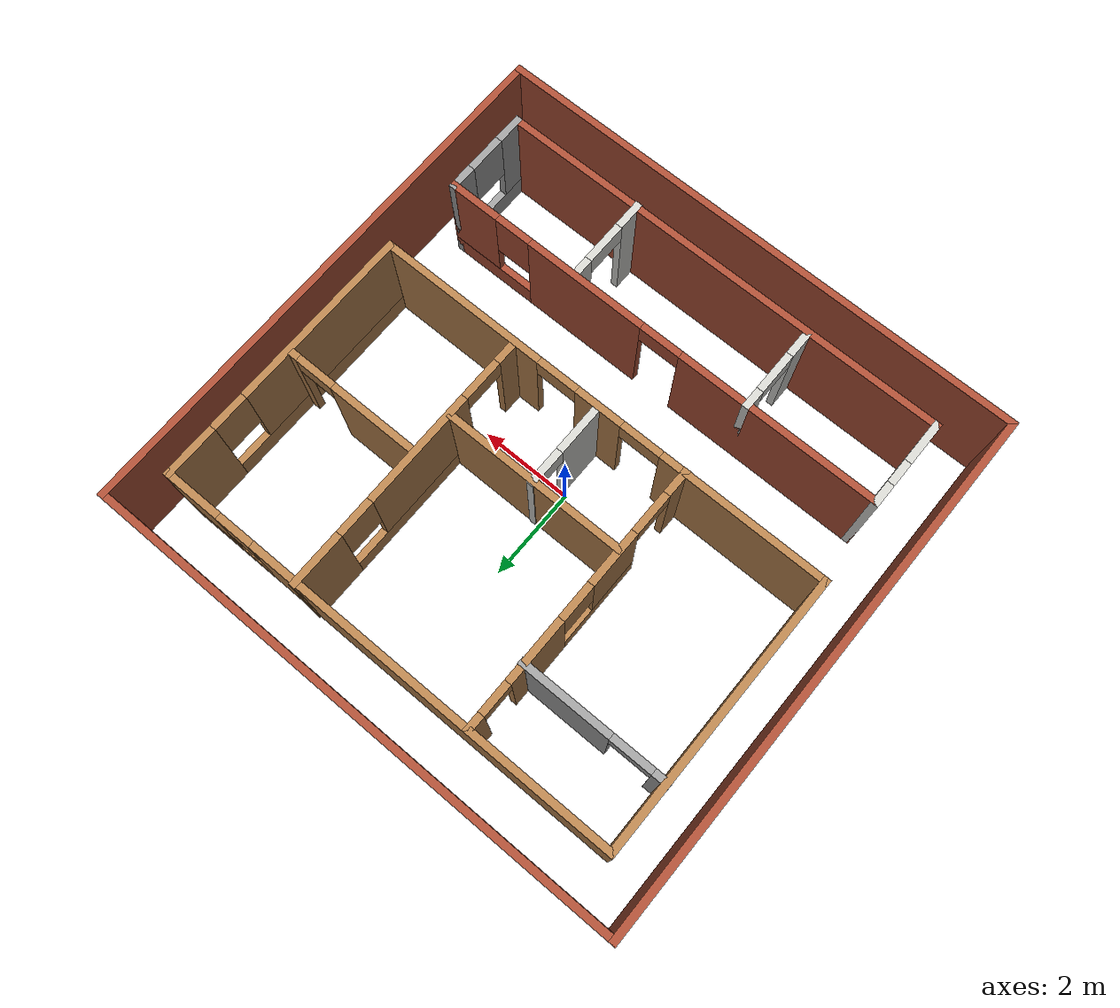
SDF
<?xml version='1.0'?>
<sdf version='1.6'>
  <model name='Building'>
    <pose frame=''>0.011861 0.071528 0 0 -0 0</pose>
    <link name='Wall_0'>
      <collision name='Wall_0_Collision'>
        <geometry>
          <box>
            <size>11.75 0.15 2.5</size>
          </box>
        </geometry>
        <pose frame=''>0 0 1.25 0 -0 0</pose>
      </collision>
      <visual name='Wall_0_Visual'>
        <pose frame=''>0 0 1.25 0 -0 0</pose>
        <geometry>
          <box>
            <size>11.75 0.15 2.5</size>
          </box>
        </geometry>
        <material>
          <script>
            <uri>file://media/materials/scripts/gazebo.material</uri>
            <name>Gazebo/Bricks</name>
          </script>
          <ambient>1 1 1 1</ambient>
        </material>
      </visual>
      <pose frame=''>0 5.675 0 0 -0 0</pose>
    </link>
    <link name='Wall_1'>
      <collision name='Wall_1_Collision'>
        <geometry>
          <box>
            <size>11.5 0.15 2.5</size>
          </box>
        </geometry>
        <pose frame=''>0 0 1.25 0 -0 0</pose>
      </collision>
      <visual name='Wall_1_Visual'>
        <pose frame=''>0 0 1.25 0 -0 0</pose>
        <geometry>
          <box>
            <size>11.5 0.15 2.5</size>
          </box>
        </geometry>
        <material>
          <script>
            <uri>file://media/materials/scripts/gazebo.material</uri>
            <name>Gazebo/Bricks</name>
          </script>
          <ambient>1 1 1 1</ambient>
        </material>
      </visual>
      <pose frame=''>5.8 0 0 0 0 -1.5708</pose>
    </link>
    <link name='Wall_10'>
      <pose frame=''>-1.84004 1.73225 0 0 0 -1.5708</pose>
      <visual name='Wall_10_Visual_0'>
        <pose frame=''>-2.79882 0 1.25 0 -0 0</pose>
        <geometry>
          <box>
            <size>0.402365 0.15 2.5</size>
          </box>
        </geometry>
        <material>
          <script>
            <uri>file://media/materials/scripts/gazebo.material</uri>
            <name>Gazebo/Wood</name>
          </script>
          <ambient>1 1 1 1</ambient>
        </material>
      </visual>
      <collision name='Wall_10_Collision_0'>
        <geometry>
          <box>
            <size>0.402365 0.15 2.5</size>
          </box>
        </geometry>
        <pose frame=''>-2.79882 0 1.25 0 -0 0</pose>
      </collision>
      <visual name='Wall_10_Visual_1'>
        <pose frame=''>-1.20319 0 1.25 0 -0 0</pose>
        <geometry>
          <box>
            <size>1.40523 0.15 2.5</size>
          </box>
        </geometry>
        <material>
          <script>
            <uri>file://media/materials/scripts/gazebo.material</uri>
            <name>Gazebo/Wood</name>
          </script>
          <ambient>1 1 1 1</ambient>
        </material>
      </visual>
      <collision name='Wall_10_Collision_1'>
        <geometry>
          <box>
            <size>1.40523 0.15 2.5</size>
          </box>
        </geometry>
        <pose frame=''>-1.20319 0 1.25 0 -0 0</pose>
      </collision>
      <visual name='Wall_10_Visual_2'>
        <pose frame=''>2.70402 0 1.25 0 -0 0</pose>
        <geometry>
          <box>
            <size>0.591953 0.15 2.5</size>
          </box>
        </geometry>
        <material>
          <script>
            <uri>file://media/materials/scripts/gazebo.material</uri>
            <name>Gazebo/Wood</name>
          </script>
          <ambient>1 1 1 1</ambient>
        </material>
      </visual>
      <collision name='Wall_10_Collision_2'>
        <geometry>
          <box>
            <size>0.591953 0.15 2.5</size>
          </box>
        </geometry>
        <pose frame=''>2.70402 0 1.25 0 -0 0</pose>
      </collision>
      <visual name='Wall_10_Visual_3'>
        <pose frame=''>0.503735 0 0.25 0 -0 0</pose>
        <geometry>
          <box>
            <size>2.00862 0.15 0.5</size>
          </box>
        </geometry>
        <material>
          <script>
            <uri>file://media/materials/scripts/gazebo.material</uri>
            <name>Gazebo/Wood</name>
          </script>
          <ambient>1 1 1 1</ambient>
        </material>
      </visual>
      <collision name='Wall_10_Collision_3'>
        <geometry>
          <box>
            <size>2.00862 0.15 0.5</size>
          </box>
        </geometry>
        <pose frame=''>0.503735 0 0.25 0 -0 0</pose>
      </collision>
      <visual name='Wall_10_Visual_4'>
        <pose frame=''>0.903735 0 1.5 0 -0 0</pose>
        <geometry>
          <box>
            <size>1.20862 0.15 2</size>
          </box>
        </geometry>
        <material>
          <script>
            <uri>file://media/materials/scripts/gazebo.material</uri>
            <name>Gazebo/Wood</name>
          </script>
          <ambient>1 1 1 1</ambient>
        </material>
      </visual>
      <collision name='Wall_10_Collision_4'>
        <geometry>
          <box>
            <size>1.20862 0.15 2</size>
          </box>
        </geometry>
        <pose frame=''>0.903735 0 1.5 0 -0 0</pose>
      </collision>
      <visual name='Wall_10_Visual_5'>
        <pose frame=''>-0.100577 0 1.9 0 -0 0</pose>
        <geometry>
          <box>
            <size>0.8 0.15 1.2</size>
          </box>
        </geometry>
        <material>
          <script>
            <uri>file://media/materials/scripts/gazebo.material</uri>
            <name>Gazebo/Wood</name>
          </script>
          <ambient>1 1 1 1</ambient>
        </material>
      </visual>
      <collision name='Wall_10_Collision_5'>
        <geometry>
          <box>
            <size>0.8 0.15 1.2</size>
          </box>
        </geometry>
        <pose frame=''>-0.100577 0 1.9 0 -0 0</pose>
      </collision>
      <visual name='Wall_10_Visual_6'>
        <pose frame=''>-2.25172 0 2.25 0 -0 0</pose>
        <geometry>
          <box>
            <size>0.691825 0.15 0.5</size>
          </box>
        </geometry>
        <material>
          <script>
            <uri>file://media/materials/scripts/gazebo.material</uri>
            <name>Gazebo/Wood</name>
          </script>
          <ambient>1 1 1 1</ambient>
        </material>
      </visual>
      <collision name='Wall_10_Collision_6'>
        <geometry>
          <box>
            <size>0.691825 0.15 0.5</size>
          </box>
        </geometry>
        <pose frame=''>-2.25172 0 2.25 0 -0 0</pose>
      </collision>
      <visual name='Wall_10_Visual_7'>
        <pose frame=''>1.95805 0 2.25 0 -0 0</pose>
        <geometry>
          <box>
            <size>0.9 0.15 0.5</size>
          </box>
        </geometry>
        <material>
          <script>
            <uri>file://media/materials/scripts/gazebo.material</uri>
            <name>Gazebo/Wood</name>
          </script>
          <ambient>1 1 1 1</ambient>
        </material>
      </visual>
      <collision name='Wall_10_Collision_7'>
        <geometry>
          <box>
            <size>0.9 0.15 0.5</size>
          </box>
        </geometry>
        <pose frame=''>1.95805 0 2.25 0 -0 0</pose>
      </collision>
    </link>
    <link name='Wall_12'>
      <pose frame=''>2.10026 1.76579 0 0 0 -1.5708</pose>
      <visual name='Wall_12_Visual_0'>
        <pose frame=''>-2.39274 0 1.25 0 -0 0</pose>
        <geometry>
          <box>
            <size>1.21452 0.15 2.5</size>
          </box>
        </geometry>
        <material>
          <script>
            <uri>file://media/materials/scripts/gazebo.material</uri>
            <name>Gazebo/Wood</name>
          </script>
          <ambient>1 1 1 1</ambient>
        </material>
      </visual>
      <collision name='Wall_12_Collision_0'>
        <geometry>
          <box>
            <size>1.21452 0.15 2.5</size>
          </box>
        </geometry>
        <pose frame=''>-2.39274 0 1.25 0 -0 0</pose>
      </collision>
      <visual name='Wall_12_Visual_1'>
        <pose frame=''>2.72079 0 1.25 0 -0 0</pose>
        <geometry>
          <box>
            <size>0.558413 0.15 2.5</size>
          </box>
        </geometry>
        <material>
          <script>
            <uri>file://media/materials/scripts/gazebo.material</uri>
            <name>Gazebo/Wood</name>
          </script>
          <ambient>1 1 1 1</ambient>
        </material>
      </visual>
      <collision name='Wall_12_Collision_1'>
        <geometry>
          <box>
            <size>0.558413 0.15 2.5</size>
          </box>
        </geometry>
        <pose frame=''>2.72079 0 1.25 0 -0 0</pose>
      </collision>
      <visual name='Wall_12_Visual_2'>
        <pose frame=''>-0.121948 0 0.25 0 -0 0</pose>
        <geometry>
          <box>
            <size>3.32707 0.15 0.5</size>
          </box>
        </geometry>
        <material>
          <script>
            <uri>file://media/materials/scripts/gazebo.material</uri>
            <name>Gazebo/Wood</name>
          </script>
          <ambient>1 1 1 1</ambient>
        </material>
      </visual>
      <collision name='Wall_12_Collision_2'>
        <geometry>
          <box>
            <size>3.32707 0.15 0.5</size>
          </box>
        </geometry>
        <pose frame=''>-0.121948 0 0.25 0 -0 0</pose>
      </collision>
      <visual name='Wall_12_Visual_3'>
        <pose frame=''>0.278052 0 1.5 0 -0 0</pose>
        <geometry>
          <box>
            <size>2.52707 0.15 2</size>
          </box>
        </geometry>
        <material>
          <script>
            <uri>file://media/materials/scripts/gazebo.material</uri>
            <name>Gazebo/Wood</name>
          </script>
          <ambient>1 1 1 1</ambient>
        </material>
      </visual>
      <collision name='Wall_12_Collision_3'>
        <geometry>
          <box>
            <size>2.52707 0.15 2</size>
          </box>
        </geometry>
        <pose frame=''>0.278052 0 1.5 0 -0 0</pose>
      </collision>
      <visual name='Wall_12_Visual_4'>
        <pose frame=''>-1.38548 0 1.9 0 -0 0</pose>
        <geometry>
          <box>
            <size>0.8 0.15 1.2</size>
          </box>
        </geometry>
        <material>
          <script>
            <uri>file://media/materials/scripts/gazebo.material</uri>
            <name>Gazebo/Wood</name>
          </script>
          <ambient>1 1 1 1</ambient>
        </material>
      </visual>
      <collision name='Wall_12_Collision_4'>
        <geometry>
          <box>
            <size>0.8 0.15 1.2</size>
          </box>
        </geometry>
        <pose frame=''>-1.38548 0 1.9 0 -0 0</pose>
      </collision>
      <visual name='Wall_12_Visual_5'>
        <pose frame=''>1.99159 0 2.25 0 -0 0</pose>
        <geometry>
          <box>
            <size>0.9 0.15 0.5</size>
          </box>
        </geometry>
        <material>
          <script>
            <uri>file://media/materials/scripts/gazebo.material</uri>
            <name>Gazebo/Wood</name>
          </script>
          <ambient>1 1 1 1</ambient>
        </material>
      </visual>
      <collision name='Wall_12_Collision_5'>
        <geometry>
          <box>
            <size>0.9 0.15 0.5</size>
          </box>
        </geometry>
        <pose frame=''>1.99159 0 2.25 0 -0 0</pose>
      </collision>
    </link>
    <link name='Wall_14'>
      <pose frame=''>-3.37566 3.22084 0 0 -0 0</pose>
      <visual name='Wall_14_Visual_0'>
        <pose frame=''>-1.44701 0 1.25 0 -0 0</pose>
        <geometry>
          <box>
            <size>0.355984 0.15 2.5</size>
          </box>
        </geometry>
        <material>
          <script>
            <uri>file://media/materials/scripts/gazebo.material</uri>
            <name>Gazebo/Grey</name>
          </script>
          <ambient>1 1 1 1</ambient>
        </material>
      </visual>
      <collision name='Wall_14_Collision_0'>
        <geometry>
          <box>
            <size>0.355984 0.15 2.5</size>
          </box>
        </geometry>
        <pose frame=''>-1.44701 0 1.25 0 -0 0</pose>
      </collision>
      <visual name='Wall_14_Visual_1'>
        <pose frame=''>0.627992 0 1.25 0 -0 0</pose>
        <geometry>
          <box>
            <size>1.99402 0.15 2.5</size>
          </box>
        </geometry>
        <material>
          <script>
            <uri>file://media/materials/scripts/gazebo.material</uri>
            <name>Gazebo/Grey</name>
          </script>
          <ambient>1 1 1 1</ambient>
        </material>
      </visual>
      <collision name='Wall_14_Collision_1'>
        <geometry>
          <box>
            <size>1.99402 0.15 2.5</size>
          </box>
        </geometry>
        <pose frame=''>0.627992 0 1.25 0 -0 0</pose>
      </collision>
      <visual name='Wall_14_Visual_2'>
        <pose frame=''>-0.819016 0 2.25 0 -0 0</pose>
        <geometry>
          <box>
            <size>0.9 0.15 0.5</size>
          </box>
        </geometry>
        <material>
          <script>
            <uri>file://media/materials/scripts/gazebo.material</uri>
            <name>Gazebo/Grey</name>
          </script>
          <ambient>1 1 1 1</ambient>
        </material>
      </visual>
      <collision name='Wall_14_Collision_2'>
        <geometry>
          <box>
            <size>0.9 0.15 0.5</size>
          </box>
        </geometry>
        <pose frame=''>-0.819016 0 2.25 0 -0 0</pose>
      </collision>
    </link>
    <link name='Wall_16'>
      <pose frame=''>3.63166 1.57857 0 0 -0 0</pose>
      <visual name='Wall_16_Visual_0'>
        <pose frame=''>-0.52805 0 1.25 0 -0 0</pose>
        <geometry>
          <box>
            <size>1.9439 0.15 2.5</size>
          </box>
        </geometry>
        <material>
          <script>
            <uri>file://media/materials/scripts/gazebo.material</uri>
            <name>Gazebo/Wood</name>
          </script>
          <ambient>1 1 1 1</ambient>
        </material>
      </visual>
      <collision name='Wall_16_Collision_0'>
        <geometry>
          <box>
            <size>1.9439 0.15 2.5</size>
          </box>
        </geometry>
        <pose frame=''>-0.52805 0 1.25 0 -0 0</pose>
      </collision>
      <visual name='Wall_16_Visual_1'>
        <pose frame=''>1.39882 0 1.25 0 -0 0</pose>
        <geometry>
          <box>
            <size>0.202362 0.15 2.5</size>
          </box>
        </geometry>
        <material>
          <script>
            <uri>file://media/materials/scripts/gazebo.material</uri>
            <name>Gazebo/Wood</name>
          </script>
          <ambient>1 1 1 1</ambient>
        </material>
      </visual>
      <collision name='Wall_16_Collision_1'>
        <geometry>
          <box>
            <size>0.202362 0.15 2.5</size>
          </box>
        </geometry>
        <pose frame=''>1.39882 0 1.25 0 -0 0</pose>
      </collision>
      <visual name='Wall_16_Visual_2'>
        <pose frame=''>0.870769 0 2.25 0 -0 0</pose>
        <geometry>
          <box>
            <size>0.853739 0.15 0.5</size>
          </box>
        </geometry>
        <material>
          <script>
            <uri>file://media/materials/scripts/gazebo.material</uri>
            <name>Gazebo/Wood</name>
          </script>
          <ambient>1 1 1 1</ambient>
        </material>
      </visual>
      <collision name='Wall_16_Collision_2'>
        <geometry>
          <box>
            <size>0.853739 0.15 0.5</size>
          </box>
        </geometry>
        <pose frame=''>0.870769 0 2.25 0 -0 0</pose>
      </collision>
    </link>
    <link name='Wall_18'>
      <collision name='Wall_18_Collision'>
        <geometry>
          <box>
            <size>4 0.15 2.5</size>
          </box>
        </geometry>
        <pose frame=''>0 0 1.25 0 -0 0</pose>
      </collision>
      <visual name='Wall_18_Visual'>
        <pose frame=''>0 0 1.25 0 -0 0</pose>
        <geometry>
          <box>
            <size>4 0.15 2.5</size>
          </box>
        </geometry>
        <material>
          <script>
            <uri>file://media/materials/scripts/gazebo.material</uri>
            <name>Gazebo/Wood</name>
          </script>
          <ambient>1 1 1 1</ambient>
        </material>
      </visual>
      <pose frame=''>0.11503 0.647562 0 0 -0 0</pose>
    </link>
    <link name='Wall_2'>
      <collision name='Wall_2_Collision'>
        <geometry>
          <box>
            <size>11.75 0.15 2.5</size>
          </box>
        </geometry>
        <pose frame=''>0 0 1.25 0 -0 0</pose>
      </collision>
      <visual name='Wall_2_Visual'>
        <pose frame=''>0 0 1.25 0 -0 0</pose>
        <geometry>
          <box>
            <size>11.75 0.15 2.5</size>
          </box>
        </geometry>
        <material>
          <script>
            <uri>file://media/materials/scripts/gazebo.material</uri>
            <name>Gazebo/Bricks</name>
          </script>
          <ambient>1 1 1 1</ambient>
        </material>
      </visual>
      <pose frame=''>0 -5.675 0 0 -0 3.14159</pose>
    </link>
    <link name='Wall_20'>
      <pose frame=''>0.128375 -0.257777 0 0 0 -1.5708</pose>
      <visual name='Wall_20_Visual_0'>
        <pose frame=''>-0.885558 0 1.25 0 -0 0</pose>
        <geometry>
          <box>
            <size>0.228885 0.15 2.5</size>
          </box>
        </geometry>
        <material>
          <script>
            <uri>file://media/materials/scripts/gazebo.material</uri>
            <name>Gazebo/CeilingTiled</name>
          </script>
          <ambient>1 1 1 1</ambient>
        </material>
      </visual>
      <collision name='Wall_20_Collision_0'>
        <geometry>
          <box>
            <size>0.228885 0.15 2.5</size>
          </box>
        </geometry>
        <pose frame=''>-0.885558 0 1.25 0 -0 0</pose>
      </collision>
      <visual name='Wall_20_Visual_1'>
        <pose frame=''>0.414094 0 1.25 0 -0 0</pose>
        <geometry>
          <box>
            <size>1.17181 0.15 2.5</size>
          </box>
        </geometry>
        <material>
          <script>
            <uri>file://media/materials/scripts/gazebo.material</uri>
            <name>Gazebo/CeilingTiled</name>
          </script>
          <ambient>1 1 1 1</ambient>
        </material>
      </visual>
      <collision name='Wall_20_Collision_1'>
        <geometry>
          <box>
            <size>1.17181 0.15 2.5</size>
          </box>
        </geometry>
        <pose frame=''>0.414094 0 1.25 0 -0 0</pose>
      </collision>
      <visual name='Wall_20_Visual_2'>
        <pose frame=''>-0.471464 0 2.25 0 -0 0</pose>
        <geometry>
          <box>
            <size>0.599302 0.15 0.5</size>
          </box>
        </geometry>
        <material>
          <script>
            <uri>file://media/materials/scripts/gazebo.material</uri>
            <name>Gazebo/CeilingTiled</name>
          </script>
          <ambient>1 1 1 1</ambient>
        </material>
      </visual>
      <collision name='Wall_20_Collision_2'>
        <geometry>
          <box>
            <size>0.599302 0.15 0.5</size>
          </box>
        </geometry>
        <pose frame=''>-0.471464 0 2.25 0 -0 0</pose>
      </collision>
    </link>
    <link name='Wall_22'>
      <pose frame=''>0.162408 -2.91686 0 0 -0 0</pose>
      <visual name='Wall_22_Visual_0'>
        <pose frame=''>-2.77553 0 1.25 0 -0 0</pose>
        <geometry>
          <box>
            <size>4.44895 0.15 2.5</size>
          </box>
        </geometry>
        <material>
          <script>
            <uri>file://media/materials/scripts/gazebo.material</uri>
            <name>Gazebo/Bricks</name>
          </script>
          <ambient>1 1 1 1</ambient>
        </material>
      </visual>
      <collision name='Wall_22_Collision_0'>
        <geometry>
          <box>
            <size>4.44895 0.15 2.5</size>
          </box>
        </geometry>
        <pose frame=''>-2.77553 0 1.25 0 -0 0</pose>
      </collision>
      <visual name='Wall_22_Visual_1'>
        <pose frame=''>1.69344 0 1.25 0 -0 0</pose>
        <geometry>
          <box>
            <size>2.68898 0.15 2.5</size>
          </box>
        </geometry>
        <material>
          <script>
            <uri>file://media/materials/scripts/gazebo.material</uri>
            <name>Gazebo/Bricks</name>
          </script>
          <ambient>1 1 1 1</ambient>
        </material>
      </visual>
      <collision name='Wall_22_Collision_1'>
        <geometry>
          <box>
            <size>2.68898 0.15 2.5</size>
          </box>
        </geometry>
        <pose frame=''>1.69344 0 1.25 0 -0 0</pose>
      </collision>
      <visual name='Wall_22_Visual_2'>
        <pose frame=''>4.01896 0 0.25 0 -0 0</pose>
        <geometry>
          <box>
            <size>1.96207 0.15 0.5</size>
          </box>
        </geometry>
        <material>
          <script>
            <uri>file://media/materials/scripts/gazebo.material</uri>
            <name>Gazebo/Bricks</name>
          </script>
          <ambient>1 1 1 1</ambient>
        </material>
      </visual>
      <collision name='Wall_22_Collision_2'>
        <geometry>
          <box>
            <size>1.96207 0.15 0.5</size>
          </box>
        </geometry>
        <pose frame=''>4.01896 0 0.25 0 -0 0</pose>
      </collision>
      <visual name='Wall_22_Visual_3'>
        <pose frame=''>4.41896 0 1.5 0 -0 0</pose>
        <geometry>
          <box>
            <size>1.16207 0.15 2</size>
          </box>
        </geometry>
        <material>
          <script>
            <uri>file://media/materials/scripts/gazebo.material</uri>
            <name>Gazebo/Bricks</name>
          </script>
          <ambient>1 1 1 1</ambient>
        </material>
      </visual>
      <collision name='Wall_22_Collision_3'>
        <geometry>
          <box>
            <size>1.16207 0.15 2</size>
          </box>
        </geometry>
        <pose frame=''>4.41896 0 1.5 0 -0 0</pose>
      </collision>
      <visual name='Wall_22_Visual_4'>
        <pose frame=''>3.43793 0 1.9 0 -0 0</pose>
        <geometry>
          <box>
            <size>0.8 0.15 1.2</size>
          </box>
        </geometry>
        <material>
          <script>
            <uri>file://media/materials/scripts/gazebo.material</uri>
            <name>Gazebo/Bricks</name>
          </script>
          <ambient>1 1 1 1</ambient>
        </material>
      </visual>
      <collision name='Wall_22_Collision_4'>
        <geometry>
          <box>
            <size>0.8 0.15 1.2</size>
          </box>
        </geometry>
        <pose frame=''>3.43793 0 1.9 0 -0 0</pose>
      </collision>
      <visual name='Wall_22_Visual_5'>
        <pose frame=''>-0.101055 0 2.25 0 -0 0</pose>
        <geometry>
          <box>
            <size>0.9 0.15 0.5</size>
          </box>
        </geometry>
        <material>
          <script>
            <uri>file://media/materials/scripts/gazebo.material</uri>
            <name>Gazebo/Bricks</name>
          </script>
          <ambient>1 1 1 1</ambient>
        </material>
      </visual>
      <collision name='Wall_22_Collision_5'>
        <geometry>
          <box>
            <size>0.9 0.15 0.5</size>
          </box>
        </geometry>
        <pose frame=''>-0.101055 0 2.25 0 -0 0</pose>
      </collision>
    </link>
    <link name='Wall_23'>
      <pose frame=''>5.08741 -3.84186 0 0 0 -1.5708</pose>
      <visual name='Wall_23_Visual_0'>
        <pose frame=''>-0.715413 0 1.25 0 -0 0</pose>
        <geometry>
          <box>
            <size>0.569174 0.15 2.5</size>
          </box>
        </geometry>
        <material>
          <script>
            <uri>file://media/materials/scripts/gazebo.material</uri>
            <name>Gazebo/Grey</name>
          </script>
          <ambient>1 1 1 1</ambient>
        </material>
      </visual>
      <collision name='Wall_23_Collision_0'>
        <geometry>
          <box>
            <size>0.569174 0.15 2.5</size>
          </box>
        </geometry>
        <pose frame=''>-0.715413 0 1.25 0 -0 0</pose>
      </collision>
      <visual name='Wall_23_Visual_1'>
        <pose frame=''>0.284587 0 0.25 0 -0 0</pose>
        <geometry>
          <box>
            <size>1.43083 0.15 0.5</size>
          </box>
        </geometry>
        <material>
          <script>
            <uri>file://media/materials/scripts/gazebo.material</uri>
            <name>Gazebo/Grey</name>
          </script>
          <ambient>1 1 1 1</ambient>
        </material>
      </visual>
      <collision name='Wall_23_Collision_1'>
        <geometry>
          <box>
            <size>1.43083 0.15 0.5</size>
          </box>
        </geometry>
        <pose frame=''>0.284587 0 0.25 0 -0 0</pose>
      </collision>
      <visual name='Wall_23_Visual_2'>
        <pose frame=''>0.684587 0 1.5 0 -0 0</pose>
        <geometry>
          <box>
            <size>0.630826 0.15 2</size>
          </box>
        </geometry>
        <material>
          <script>
            <uri>file://media/materials/scripts/gazebo.material</uri>
            <name>Gazebo/Grey</name>
          </script>
          <ambient>1 1 1 1</ambient>
        </material>
      </visual>
      <collision name='Wall_23_Collision_2'>
        <geometry>
          <box>
            <size>0.630826 0.15 2</size>
          </box>
        </geometry>
        <pose frame=''>0.684587 0 1.5 0 -0 0</pose>
      </collision>
      <visual name='Wall_23_Visual_3'>
        <pose frame=''>-0.030826 0 1.9 0 -0 0</pose>
        <geometry>
          <box>
            <size>0.8 0.15 1.2</size>
          </box>
        </geometry>
        <material>
          <script>
            <uri>file://media/materials/scripts/gazebo.material</uri>
            <name>Gazebo/Grey</name>
          </script>
          <ambient>1 1 1 1</ambient>
        </material>
      </visual>
      <collision name='Wall_23_Collision_3'>
        <geometry>
          <box>
            <size>0.8 0.15 1.2</size>
          </box>
        </geometry>
        <pose frame=''>-0.030826 0 1.9 0 -0 0</pose>
      </collision>
    </link>
    <link name='Wall_24'>
      <collision name='Wall_24_Collision'>
        <geometry>
          <box>
            <size>10 0.15 2.5</size>
          </box>
        </geometry>
        <pose frame=''>0 0 1.25 0 -0 0</pose>
      </collision>
      <visual name='Wall_24_Visual'>
        <pose frame=''>0 0 1.25 0 -0 0</pose>
        <geometry>
          <box>
            <size>10 0.15 2.5</size>
          </box>
        </geometry>
        <material>
          <script>
            <uri>file://media/materials/scripts/gazebo.material</uri>
            <name>Gazebo/Bricks</name>
          </script>
          <ambient>1 1 1 1</ambient>
        </material>
      </visual>
      <pose frame=''>0.162408 -4.76686 0 0 -0 3.14159</pose>
    </link>
    <link name='Wall_25'>
      <pose frame=''>-4.76259 -3.84186 0 0 -0 1.5708</pose>
      <visual name='Wall_25_Visual_0'>
        <pose frame=''>-0.51876 0 1.25 0 -0 0</pose>
        <geometry>
          <box>
            <size>0.962481 0.15 2.5</size>
          </box>
        </geometry>
        <material>
          <script>
            <uri>file://media/materials/scripts/gazebo.material</uri>
            <name>Gazebo/CeilingTiled</name>
          </script>
          <ambient>1 1 1 1</ambient>
        </material>
      </visual>
      <collision name='Wall_25_Collision_0'>
        <geometry>
          <box>
            <size>0.962481 0.15 2.5</size>
          </box>
        </geometry>
        <pose frame=''>-0.51876 0 1.25 0 -0 0</pose>
      </collision>
      <visual name='Wall_25_Visual_1'>
        <pose frame=''>0.746196 0 1.25 0 -0 0</pose>
        <geometry>
          <box>
            <size>0.507609 0.15 2.5</size>
          </box>
        </geometry>
        <material>
          <script>
            <uri>file://media/materials/scripts/gazebo.material</uri>
            <name>Gazebo/CeilingTiled</name>
          </script>
          <ambient>1 1 1 1</ambient>
        </material>
      </visual>
      <collision name='Wall_25_Collision_1'>
        <geometry>
          <box>
            <size>0.507609 0.15 2.5</size>
          </box>
        </geometry>
        <pose frame=''>0.746196 0 1.25 0 -0 0</pose>
      </collision>
      <visual name='Wall_25_Visual_2'>
        <pose frame=''>0.227436 0 2.25 0 -0 0</pose>
        <geometry>
          <box>
            <size>0.52991 0.15 0.5</size>
          </box>
        </geometry>
        <material>
          <script>
            <uri>file://media/materials/scripts/gazebo.material</uri>
            <name>Gazebo/CeilingTiled</name>
          </script>
          <ambient>1 1 1 1</ambient>
        </material>
      </visual>
      <collision name='Wall_25_Collision_2'>
        <geometry>
          <box>
            <size>0.52991 0.15 0.5</size>
          </box>
        </geometry>
        <pose frame=''>0.227436 0 2.25 0 -0 0</pose>
      </collision>
    </link>
    <link name='Wall_27'>
      <pose frame=''>-1.91637 -3.84186 0 0 0 -1.5708</pose>
      <visual name='Wall_27_Visual_0'>
        <pose frame=''>-0.775109 0 1.25 0 -0 0</pose>
        <geometry>
          <box>
            <size>0.449782 0.15 2.5</size>
          </box>
        </geometry>
        <material>
          <script>
            <uri>file://media/materials/scripts/gazebo.material</uri>
            <name>Gazebo/CeilingTiled</name>
          </script>
          <ambient>1 1 1 1</ambient>
        </material>
      </visual>
      <collision name='Wall_27_Collision_0'>
        <geometry>
          <box>
            <size>0.449782 0.15 2.5</size>
          </box>
        </geometry>
        <pose frame=''>-0.775109 0 1.25 0 -0 0</pose>
      </collision>
      <visual name='Wall_27_Visual_1'>
        <pose frame=''>0.674891 0 1.25 0 -0 0</pose>
        <geometry>
          <box>
            <size>0.650218 0.15 2.5</size>
          </box>
        </geometry>
        <material>
          <script>
            <uri>file://media/materials/scripts/gazebo.material</uri>
            <name>Gazebo/CeilingTiled</name>
          </script>
          <ambient>1 1 1 1</ambient>
        </material>
      </visual>
      <collision name='Wall_27_Collision_1'>
        <geometry>
          <box>
            <size>0.650218 0.15 2.5</size>
          </box>
        </geometry>
        <pose frame=''>0.674891 0 1.25 0 -0 0</pose>
      </collision>
      <visual name='Wall_27_Visual_2'>
        <pose frame=''>-0.100218 0 2.25 0 -0 0</pose>
        <geometry>
          <box>
            <size>0.9 0.15 0.5</size>
          </box>
        </geometry>
        <material>
          <script>
            <uri>file://media/materials/scripts/gazebo.material</uri>
            <name>Gazebo/CeilingTiled</name>
          </script>
          <ambient>1 1 1 1</ambient>
        </material>
      </visual>
      <collision name='Wall_27_Collision_2'>
        <geometry>
          <box>
            <size>0.9 0.15 0.5</size>
          </box>
        </geometry>
        <pose frame=''>-0.100218 0 2.25 0 -0 0</pose>
      </collision>
    </link>
    <link name='Wall_29'>
      <pose frame=''>2.13033 -3.86152 0 0 0 -1.5708</pose>
      <visual name='Wall_29_Visual_0'>
        <pose frame=''>-0.761809 0 1.25 0 -0 0</pose>
        <geometry>
          <box>
            <size>0.476383 0.15 2.5</size>
          </box>
        </geometry>
        <material>
          <script>
            <uri>file://media/materials/scripts/gazebo.material</uri>
            <name>Gazebo/CeilingTiled</name>
          </script>
          <ambient>1 1 1 1</ambient>
        </material>
      </visual>
      <collision name='Wall_29_Collision_0'>
        <geometry>
          <box>
            <size>0.476383 0.15 2.5</size>
          </box>
        </geometry>
        <pose frame=''>-0.761809 0 1.25 0 -0 0</pose>
      </collision>
      <visual name='Wall_29_Visual_1'>
        <pose frame=''>0.688191 0 1.25 0 -0 0</pose>
        <geometry>
          <box>
            <size>0.623617 0.15 2.5</size>
          </box>
        </geometry>
        <material>
          <script>
            <uri>file://media/materials/scripts/gazebo.material</uri>
            <name>Gazebo/CeilingTiled</name>
          </script>
          <ambient>1 1 1 1</ambient>
        </material>
      </visual>
      <collision name='Wall_29_Collision_1'>
        <geometry>
          <box>
            <size>0.623617 0.15 2.5</size>
          </box>
        </geometry>
        <pose frame=''>0.688191 0 1.25 0 -0 0</pose>
      </collision>
      <visual name='Wall_29_Visual_2'>
        <pose frame=''>-0.073617 0 2.25 0 -0 0</pose>
        <geometry>
          <box>
            <size>0.9 0.15 0.5</size>
          </box>
        </geometry>
        <material>
          <script>
            <uri>file://media/materials/scripts/gazebo.material</uri>
            <name>Gazebo/CeilingTiled</name>
          </script>
          <ambient>1 1 1 1</ambient>
        </material>
      </visual>
      <collision name='Wall_29_Collision_2'>
        <geometry>
          <box>
            <size>0.9 0.15 0.5</size>
          </box>
        </geometry>
        <pose frame=''>-0.073617 0 2.25 0 -0 0</pose>
      </collision>
    </link>
    <link name='Wall_3'>
      <collision name='Wall_3_Collision'>
        <geometry>
          <box>
            <size>11.5 0.15 2.5</size>
          </box>
        </geometry>
        <pose frame=''>0 0 1.25 0 -0 0</pose>
      </collision>
      <visual name='Wall_3_Visual'>
        <pose frame=''>0 0 1.25 0 -0 0</pose>
        <geometry>
          <box>
            <size>11.5 0.15 2.5</size>
          </box>
        </geometry>
        <material>
          <script>
            <uri>file://media/materials/scripts/gazebo.material</uri>
            <name>Gazebo/Bricks</name>
          </script>
          <ambient>1 1 1 1</ambient>
        </material>
      </visual>
      <pose frame=''>-5.8 0 0 0 -0 1.5708</pose>
    </link>
    <link name='Wall_5'>
      <pose frame=''>0.127806 4.66419 0 0 -0 0</pose>
      <visual name='Wall_5_Visual_0'>
        <pose frame=''>-1.04937 0 1.25 0 -0 0</pose>
        <geometry>
          <box>
            <size>8.15127 0.15 2.5</size>
          </box>
        </geometry>
        <material>
          <script>
            <uri>file://media/materials/scripts/gazebo.material</uri>
            <name>Gazebo/Wood</name>
          </script>
          <ambient>1 1 1 1</ambient>
        </material>
      </visual>
      <collision name='Wall_5_Collision_0'>
        <geometry>
          <box>
            <size>8.15127 0.15 2.5</size>
          </box>
        </geometry>
        <pose frame=''>-1.04937 0 1.25 0 -0 0</pose>
      </collision>
      <visual name='Wall_5_Visual_1'>
        <pose frame=''>4.07563 0 0.25 0 -0 0</pose>
        <geometry>
          <box>
            <size>2.09873 0.15 0.5</size>
          </box>
        </geometry>
        <material>
          <script>
            <uri>file://media/materials/scripts/gazebo.material</uri>
            <name>Gazebo/Wood</name>
          </script>
          <ambient>1 1 1 1</ambient>
        </material>
      </visual>
      <collision name='Wall_5_Collision_1'>
        <geometry>
          <box>
            <size>2.09873 0.15 0.5</size>
          </box>
        </geometry>
        <pose frame=''>4.07563 0 0.25 0 -0 0</pose>
      </collision>
      <visual name='Wall_5_Visual_2'>
        <pose frame=''>4.47563 0 1.5 0 -0 0</pose>
        <geometry>
          <box>
            <size>1.29873 0.15 2</size>
          </box>
        </geometry>
        <material>
          <script>
            <uri>file://media/materials/scripts/gazebo.material</uri>
            <name>Gazebo/Wood</name>
          </script>
          <ambient>1 1 1 1</ambient>
        </material>
      </visual>
      <collision name='Wall_5_Collision_2'>
        <geometry>
          <box>
            <size>1.29873 0.15 2</size>
          </box>
        </geometry>
        <pose frame=''>4.47563 0 1.5 0 -0 0</pose>
      </collision>
      <visual name='Wall_5_Visual_3'>
        <pose frame=''>3.42627 0 1.9 0 -0 0</pose>
        <geometry>
          <box>
            <size>0.8 0.15 1.2</size>
          </box>
        </geometry>
        <material>
          <script>
            <uri>file://media/materials/scripts/gazebo.material</uri>
            <name>Gazebo/Wood</name>
          </script>
          <ambient>1 1 1 1</ambient>
        </material>
      </visual>
      <collision name='Wall_5_Collision_3'>
        <geometry>
          <box>
            <size>0.8 0.15 1.2</size>
          </box>
        </geometry>
        <pose frame=''>3.42627 0 1.9 0 -0 0</pose>
      </collision>
    </link>
    <link name='Wall_6'>
      <pose frame=''>5.17781 1.73919 0 0 0 -1.5708</pose>
      <visual name='Wall_6_Visual_0'>
        <pose frame=''>-2.40604 0 1.25 0 -0 0</pose>
        <geometry>
          <box>
            <size>1.18792 0.15 2.5</size>
          </box>
        </geometry>
        <material>
          <script>
            <uri>file://media/materials/scripts/gazebo.material</uri>
            <name>Gazebo/Wood</name>
          </script>
          <ambient>1 1 1 1</ambient>
        </material>
      </visual>
      <collision name='Wall_6_Collision_0'>
        <geometry>
          <box>
            <size>1.18792 0.15 2.5</size>
          </box>
        </geometry>
        <pose frame=''>-2.40604 0 1.25 0 -0 0</pose>
      </collision>
      <visual name='Wall_6_Visual_1'>
        <pose frame=''>0.593959 0 0.25 0 -0 0</pose>
        <geometry>
          <box>
            <size>4.81208 0.15 0.5</size>
          </box>
        </geometry>
        <material>
          <script>
            <uri>file://media/materials/scripts/gazebo.material</uri>
            <name>Gazebo/Wood</name>
          </script>
          <ambient>1 1 1 1</ambient>
        </material>
      </visual>
      <collision name='Wall_6_Collision_1'>
        <geometry>
          <box>
            <size>4.81208 0.15 0.5</size>
          </box>
        </geometry>
        <pose frame=''>0.593959 0 0.25 0 -0 0</pose>
      </collision>
      <visual name='Wall_6_Visual_2'>
        <pose frame=''>0.993959 0 1.5 0 -0 0</pose>
        <geometry>
          <box>
            <size>4.01208 0.15 2</size>
          </box>
        </geometry>
        <material>
          <script>
            <uri>file://media/materials/scripts/gazebo.material</uri>
            <name>Gazebo/Wood</name>
          </script>
          <ambient>1 1 1 1</ambient>
        </material>
      </visual>
      <collision name='Wall_6_Collision_2'>
        <geometry>
          <box>
            <size>4.01208 0.15 2</size>
          </box>
        </geometry>
        <pose frame=''>0.993959 0 1.5 0 -0 0</pose>
      </collision>
      <visual name='Wall_6_Visual_3'>
        <pose frame=''>-1.41208 0 1.9 0 -0 0</pose>
        <geometry>
          <box>
            <size>0.8 0.15 1.2</size>
          </box>
        </geometry>
        <material>
          <script>
            <uri>file://media/materials/scripts/gazebo.material</uri>
            <name>Gazebo/Wood</name>
          </script>
          <ambient>1 1 1 1</ambient>
        </material>
      </visual>
      <collision name='Wall_6_Collision_3'>
        <geometry>
          <box>
            <size>0.8 0.15 1.2</size>
          </box>
        </geometry>
        <pose frame=''>-1.41208 0 1.9 0 -0 0</pose>
      </collision>
    </link>
    <link name='Wall_7'>
      <pose frame=''>0.127806 -1.18581 0 0 -0 3.14159</pose>
      <visual name='Wall_7_Visual_0'>
        <pose frame=''>-3.26315 0 1.25 0 -0 0</pose>
        <geometry>
          <box>
            <size>3.72371 0.15 2.5</size>
          </box>
        </geometry>
        <material>
          <script>
            <uri>file://media/materials/scripts/gazebo.material</uri>
            <name>Gazebo/Wood</name>
          </script>
          <ambient>1 1 1 1</ambient>
        </material>
      </visual>
      <collision name='Wall_7_Collision_0'>
        <geometry>
          <box>
            <size>3.72371 0.15 2.5</size>
          </box>
        </geometry>
        <pose frame=''>-3.26315 0 1.25 0 -0 0</pose>
      </collision>
      <visual name='Wall_7_Visual_1'>
        <pose frame=''>0.020193 0 1.25 0 -0 0</pose>
        <geometry>
          <box>
            <size>1.04297 0.15 2.5</size>
          </box>
        </geometry>
        <material>
          <script>
            <uri>file://media/materials/scripts/gazebo.material</uri>
            <name>Gazebo/Wood</name>
          </script>
          <ambient>1 1 1 1</ambient>
        </material>
      </visual>
      <collision name='Wall_7_Collision_1'>
        <geometry>
          <box>
            <size>1.04297 0.15 2.5</size>
          </box>
        </geometry>
        <pose frame=''>0.020193 0 1.25 0 -0 0</pose>
      </collision>
      <visual name='Wall_7_Visual_2'>
        <pose frame=''>3.28334 0 1.25 0 -0 0</pose>
        <geometry>
          <box>
            <size>3.68332 0.15 2.5</size>
          </box>
        </geometry>
        <material>
          <script>
            <uri>file://media/materials/scripts/gazebo.material</uri>
            <name>Gazebo/Wood</name>
          </script>
          <ambient>1 1 1 1</ambient>
        </material>
      </visual>
      <collision name='Wall_7_Collision_2'>
        <geometry>
          <box>
            <size>3.68332 0.15 2.5</size>
          </box>
        </geometry>
        <pose frame=''>3.28334 0 1.25 0 -0 0</pose>
      </collision>
      <visual name='Wall_7_Visual_3'>
        <pose frame=''>-0.951293 0 2.25 0 -0 0</pose>
        <geometry>
          <box>
            <size>0.9 0.15 0.5</size>
          </box>
        </geometry>
        <material>
          <script>
            <uri>file://media/materials/scripts/gazebo.material</uri>
            <name>Gazebo/Wood</name>
          </script>
          <ambient>1 1 1 1</ambient>
        </material>
      </visual>
      <collision name='Wall_7_Collision_3'>
        <geometry>
          <box>
            <size>0.9 0.15 0.5</size>
          </box>
        </geometry>
        <pose frame=''>-0.951293 0 2.25 0 -0 0</pose>
      </collision>
      <visual name='Wall_7_Visual_4'>
        <pose frame=''>0.991678 0 2.25 0 -0 0</pose>
        <geometry>
          <box>
            <size>0.9 0.15 0.5</size>
          </box>
        </geometry>
        <material>
          <script>
            <uri>file://media/materials/scripts/gazebo.material</uri>
            <name>Gazebo/Wood</name>
          </script>
          <ambient>1 1 1 1</ambient>
        </material>
      </visual>
      <collision name='Wall_7_Collision_4'>
        <geometry>
          <box>
            <size>0.9 0.15 0.5</size>
          </box>
        </geometry>
        <pose frame=''>0.991678 0 2.25 0 -0 0</pose>
      </collision>
    </link>
    <link name='Wall_8'>
      <collision name='Wall_8_Collision'>
        <geometry>
          <box>
            <size>6 0.15 2.5</size>
          </box>
        </geometry>
        <pose frame=''>0 0 1.25 0 -0 0</pose>
      </collision>
      <visual name='Wall_8_Visual'>
        <pose frame=''>0 0 1.25 0 -0 0</pose>
        <geometry>
          <box>
            <size>6 0.15 2.5</size>
          </box>
        </geometry>
        <material>
          <script>
            <uri>file://media/materials/scripts/gazebo.material</uri>
            <name>Gazebo/Wood</name>
          </script>
          <ambient>1 1 1 1</ambient>
        </material>
      </visual>
      <pose frame=''>-4.92219 1.73919 0 0 -0 1.5708</pose>
    </link>
    <static>1</static>
  </model>
</sdf>
